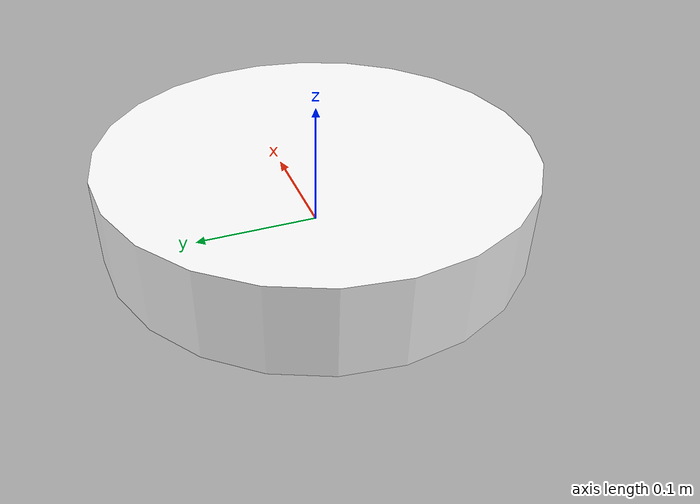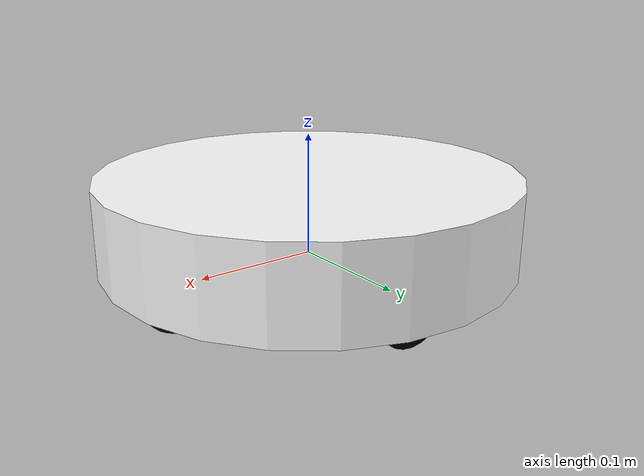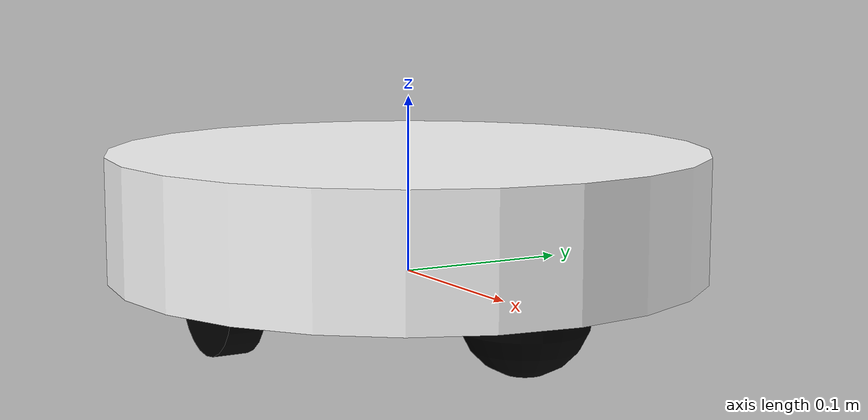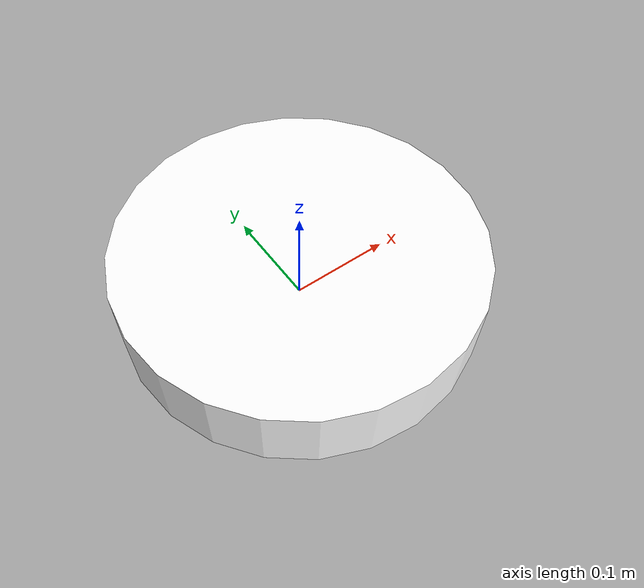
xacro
<?xml version="1.0"?>
<robot xmlns:xacro="http://www.ros.org/wiki/xacro">

    <xacro:include filename="inertial_macros.xacro"/>

    <!-- Материалы -->
    <material name="black">
        <color rgba="0 0 0 1"/>
    </material>

    <material name="white">
        <color rgba="1 1 1 1"/>
    </material>

    <material name="red">
        <color rgba="1 0 0 1"/>
    </material>

    <material name="blue">
        <color rgba="0.2 0.2 1 1"/>
    </material>

    <!-- Базовая ссылка -->
    <link name="base_link">
    </link>

    <!-- Базовый след -->
    <joint name="base_footprint_joint" type="fixed">
        <parent link="base_link"/>
        <child link="base_footprint"/>
        <origin xyz="0 0 0" rpy="0 0 0"/>
    </joint>

    <link name="base_footprint">
    </link>

    <!-- Шасси -->
    <joint name="chassis_joint" type="fixed">
        <parent link="base_link"/>
        <child link="chassis"/>
        <origin xyz="-0.17 0 0"/>
    </joint>

    <link name="chassis">
        <visual>
            <origin xyz="0.17 0 0.035"/>
            <geometry>
                <cylinder radius="0.17" length="0.07"/>
            </geometry>
            <material name="white"/>
        </visual>
        <collision>
            <origin xyz="0.17 0 0.035"/>
            <geometry>
                <cylinder radius="0.17" length="0.07"/>
            </geometry>
        </collision>
        <xacro:inertial_cylinder mass="0.5" length="0.07" radius="0.17">
            <origin xyz="0.17 0 0.035" rpy="0 0 0"/>
        </xacro:inertial_cylinder>
    </link>
    <gazebo reference="chassis">
        <material>Gazebo/White</material>
    </gazebo>

    <!-- Левое колесо -->
    <joint name="left_wheel_joint" type="continuous">
        <parent link="base_link"/>
        <child link="left_wheel"/>
        <origin xyz="0 0.115 0" rpy="-${pi/2} 0 0"/>
        <axis xyz="0 0 1"/>
    </joint>

    <link name="left_wheel">
        <visual>
            <geometry>
                <cylinder radius="0.035" length="0.02"/>
            </geometry>
            <material name="black"/>
        </visual>
        <collision>
            <geometry>
                <cylinder radius="0.035" length="0.02"/>
            </geometry>
        </collision>
        <xacro:inertial_cylinder mass="0.1" length="0.02" radius="0.035">
            <origin xyz="0 0 0" rpy="0 0 0"/>
        </xacro:inertial_cylinder>
    </link>
    <gazebo reference="left_wheel">
        <material>Gazebo/Black</material>
    </gazebo>

    <!-- Правое колесо -->
    <joint name="right_wheel_joint" type="continuous">
        <parent link="base_link"/>
        <child link="right_wheel"/>
        <origin xyz="0 -0.115 0" rpy="${pi/2} 0 0"/>
        <axis xyz="0 0 -1"/>
    </joint>

    <link name="right_wheel">
        <visual>
            <geometry>
                <cylinder radius="0.035" length="0.02"/>
            </geometry>
            <material name="black"/>
        </visual>
        <collision>
            <geometry>
                <cylinder radius="0.035" length="0.02"/>
            </geometry>
        </collision>
        <xacro:inertial_cylinder mass="0.1" length="0.02" radius="0.035">
            <origin xyz="0 0 0" rpy="0 0 0"/>
        </xacro:inertial_cylinder>
    </link>
    <gazebo reference="right_wheel">
        <material>Gazebo/Black</material>
    </gazebo>

    <!-- Переднее колесо -->
    <joint name="caster_wheel_joint" type="fixed">
        <parent link="chassis"/>
        <child link="caster_wheel"/>
        <origin xyz="0.29 0 0"/>
    </joint>

    <link name="caster_wheel">
        <visual>
            <geometry>
                <sphere radius="0.035"/>
            </geometry>
            <material name="black"/>
        </visual>
        <collision>
            <geometry>
                <sphere radius="0.035"/>
            </geometry>
        </collision>
        <xacro:inertial_sphere mass="0.5" radius="0.035">
            <origin xyz="0 0 0" rpy="0 0 0"/>
        </xacro:inertial_sphere>
    </link>
    <gazebo reference="caster_wheel">
        <material>Gazebo/Black</material>
        <mu1 value="0.001"/>
        <mu2 value="0.001"/>
    </gazebo>

</robot>

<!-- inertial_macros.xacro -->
<robot xmlns:xacro="http://www.ros.org/wiki/xacro">

    <xacro:macro name="inertial_sphere" params="mass radius *origin">
        <inertial>
            <xacro:insert_block name="origin"/>
            <mass value="${mass}"/>
            <inertia ixx="${(2/5) * mass * (radius*radius)}" ixy="0.0" ixz="0.0"
                    iyy="${(2/5) * mass * (radius*radius)}" iyz="0.0"
                    izz="${(2/5) * mass * (radius*radius)}" />
        </inertial>
    </xacro:macro>

    <xacro:macro name="inertial_box" params="mass x y z *origin">
        <inertial>
            <xacro:insert_block name="origin"/>
            <mass value="${mass}"/>
            <inertia ixx="${(1/12) * mass * (y*y+z*z)}" ixy="0.0" ixz="0.0"
                    iyy="${(1/12) * mass * (x*x+z*z)}" iyz="0.0"
                    izz="${(1/12) * mass * (x*x+y*y)}" />
        </inertial>
    </xacro:macro>

    <xacro:macro name="inertial_cylinder" params="mass length radius *origin">
        <inertial>
            <xacro:insert_block name="origin"/>
            <mass value="${mass}"/>
            <inertia ixx="${(1/12) * mass * (3*radius*radius + length*length)}" ixy="0.0" ixz="0.0"
                    iyy="${(1/12) * mass * (3*radius*radius + length*length)}" iyz="0.0"
                    izz="${(1/2) * mass * (radius*radius)}" />
        </inertial>
    </xacro:macro>

</robot>
